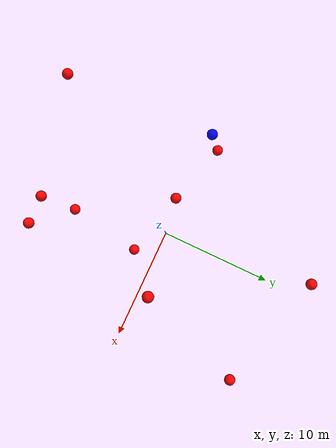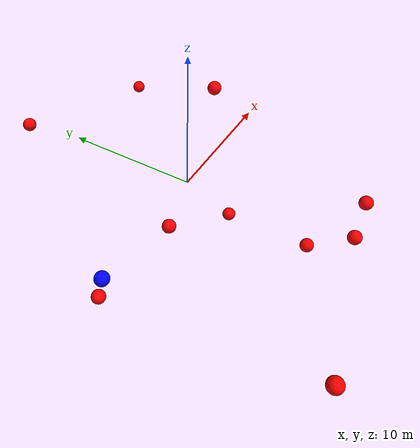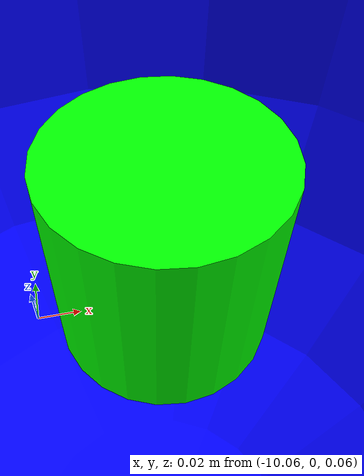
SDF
<?xml version="1.0" ?>
<sdf version="1.8">
    <world name="3d_world">
        <physics name="1ms" type="ode">
            <max_step_size>0.001</max_step_size>
            <real_time_factor>1.0</real_time_factor>
            <real_time_update_rate>1000.0</real_time_update_rate>
        </physics>
        <gravity>0 0 0</gravity>

        <plugin
            filename="gz-sim-physics-system"
            name="gz::sim::v8::systems::Physics">
        </plugin>
        <plugin
            filename="libignition-gazebo-user-commands-system.so"
            name="ignition::gazebo::systems::UserCommands">
        </plugin>
        <plugin
            filename="gz-sim-scene-broadcaster-system"
            name="gz::sim::systems::SceneBroadcaster">
        </plugin>
        <plugin
            filename="gz-sim-sensors-system"
            name="gz::sim::systems::Sensors">
            <render_engine>ogre2</render_engine>
        </plugin>

        <light type="directional" name="sun">
            <cast_shadows>true</cast_shadows>
            <pose>0 0 10 0 0 0</pose>
            <diffuse>0.8 0.8 0.8 1</diffuse>
            <specular>0.2 0.2 0.2 1</specular>
            <attenuation>
                <range>1000</range>
                <constant>0.9</constant>
                <linear>0.01</linear>
                <quadratic>0.001</quadratic>
            </attenuation>
            <direction>-0.5 0.1 -0.9</direction>
        </light>

        <!-- AGENTE -->
        <model name='agente' canonical_link='chassis'>
            <pose relative_to='world'>-10.0 0 0.0 0 0 0</pose>
            <link name='chassis'>
                <pose relative_to='__model__'>0.0 0 0.0 0 0 0</pose>
                <inertial>
                    <mass>1.14395</mass>
                    <inertia>
                        <ixx>0.095329</ixx>
                        <ixy>0</ixy>
                        <ixz>0</ixz>
                        <iyy>0.381317</iyy>
                        <iyz>0</iyz>
                        <izz>0.476646</izz>
                    </inertia>
                </inertial>
                <visual name='visual'>
                    <geometry>
                        <sphere>
                            <radius>0.5</radius>
                        </sphere>
                    </geometry>
                    <material>
                        <ambient>0.0 0.0 1.0 1</ambient>
                        <diffuse>0.0 0.0 1.0 1</diffuse>
                        <specular>0.0 0.0 1.0 1</specular>
                    </material>
                </visual>
                <collision name='collision'>
                    <geometry>
                        <sphere>
                            <radius>0.5</radius>
                        </sphere>
                    </geometry>
                </collision>
                <enable_gravity>false</enable_gravity>
            </link>

            <link name='lidar_link'>
                <pose relative_to='chassis'>0.0 0 0.1 0 0 0</pose>
                <inertial>
                    <mass>0.1</mass>
                    <inertia>
                        <ixx>0.000166667</ixx>
                        <iyy>0.000166667</iyy>
                        <izz>0.000166667</izz>
                    </inertia>
                </inertial>
                <collision name='collision'>
                    <geometry>
                        <cylinder>
                            <radius>0.05</radius>
                            <length>0.1</length>
                        </cylinder>
                    </geometry>
                </collision>
                <visual name='visual'>
                    <geometry>
                        <cylinder>
                            <radius>0.05</radius>
                            <length>0.1</length>
                        </cylinder>
                    </geometry>
                    <material>
                        <ambient>0.0 1.0 0.0 1</ambient>
                        <diffuse>0.0 1.0 0.0 1</diffuse>
                        <specular>0.0 1.0 0.0 1</specular>
                    </material>
                </visual>
                <sensor name="lidar" type="gpu_lidar">
                    <topic>scan</topic>
                    <update_rate>10</update_rate>
                    <lidar>
                        <scan>
                            <horizontal>
                                <samples>5000</samples>
                                <resolution>1</resolution>
                                <min_angle>-3.14159</min_angle>
                                <max_angle>3.14159</max_angle>
                            </horizontal>
                        </scan>
                        <range>
                            <min>0.1</min>
                            <max>10.0</max>
                            <resolution>0.01</resolution>
                        </range>
                    </lidar>
                    <visualize>true</visualize>
                    <always_on>true</always_on>
                    <update_rate>10</update_rate>
                    <pose_frame>lidar</pose_frame>
                </sensor>
                <enable_gravity>false</enable_gravity>
            </link>

            <joint name="lidar_joint" type="fixed">
                <parent>chassis</parent>
                <child>lidar_link</child>
            </joint>

            <plugin
                filename="ignition-gazebo-joint-state-publisher-system"
                name="ignition::gazebo::systems::JointStatePublisher">
            </plugin>
            <plugin
                filename="ignition-gazebo-odometry-publisher-system"
                name="ignition::gazebo::systems::OdometryPublisher">
                <dimensions>3</dimensions>
            </plugin>
            <plugin
                filename="ignition-gazebo-velocity-control-system"
                name="ignition::gazebo::systems::VelocityControl">
                <initial_linear>0.0 0 0</initial_linear>
                <initial_angular>0 0 0.0</initial_angular>
            </plugin>
            <plugin
                filename="libignition-gazebo-pose-publisher-system.so"
                name="ignition::gazebo::systems::PosePublisher">
                <topic>/agente/pose</topic>
                <frame_id>agente</frame_id>
                <update_rate>30</update_rate>
            </plugin>
        </model>

        <!-- OBSTACLE 1 -->
        <model name='obstacle_1' canonical_link='obstacle'>
            <static>false</static>
            <pose relative_to='world'>9.66 11.01 -0.84 0 0 0</pose>
            <link name='obstacle'>
                <pose relative_to='__model__'>0.0 0 0.0 0 0 0</pose>
                <visual name='visual'>
                    <geometry>
                        <sphere>
                            <radius>0.50</radius>
                        </sphere>
                    </geometry>
                    <material>
                        <ambient>1.0 0.0 0.0 1</ambient>
                        <diffuse>1.0 0.0 0.0 1</diffuse>
                        <specular>1.0 0.0 0.0 1</specular>
                    </material>
                </visual>
                <collision name='collision'>
                    <geometry>
                        <sphere>
                            <radius>0.50</radius>
                        </sphere>
                    </geometry>
                </collision>
                <enable_gravity>false</enable_gravity>
            </link>

            <plugin
                filename="ignition-gazebo-velocity-control-system"
                name="ignition::gazebo::systems::VelocityControl">
                <initial_linear>-1.17 -1.62 0.12</initial_linear>
                <initial_angular>0 0 0</initial_angular>
            </plugin>

            <plugin
                filename="ignition-gazebo-odometry-publisher-system"
                name="ignition::gazebo::systems::OdometryPublisher">
                <dimensions>3</dimensions>
            </plugin>
        </model>

        <!-- OBSTACLE 2 -->
        <model name='obstacle_2' canonical_link='obstacle'>
            <static>false</static>
            <pose relative_to='world'>1.58 -9.00 -3.08 0 0 0</pose>
            <link name='obstacle'>
                <pose relative_to='__model__'>0.0 0 0.0 0 0 0</pose>
                <visual name='visual'>
                    <geometry>
                        <sphere>
                            <radius>0.50</radius>
                        </sphere>
                    </geometry>
                    <material>
                        <ambient>1.0 0.0 0.0 1</ambient>
                        <diffuse>1.0 0.0 0.0 1</diffuse>
                        <specular>1.0 0.0 0.0 1</specular>
                    </material>
                </visual>
                <collision name='collision'>
                    <geometry>
                        <sphere>
                            <radius>0.50</radius>
                        </sphere>
                    </geometry>
                </collision>
                <enable_gravity>false</enable_gravity>
            </link>

            <plugin
                filename="ignition-gazebo-velocity-control-system"
                name="ignition::gazebo::systems::VelocityControl">
                <initial_linear>0.80 1.32 0.45</initial_linear>
                <initial_angular>0 0 0</initial_angular>
            </plugin>

            <plugin
                filename="ignition-gazebo-odometry-publisher-system"
                name="ignition::gazebo::systems::OdometryPublisher">
                <dimensions>3</dimensions>
            </plugin>
        </model>

        <!-- OBSTACLE 3 -->
        <model name='obstacle_3' canonical_link='obstacle'>
            <static>false</static>
            <pose relative_to='world'>-9.53 1.09 -3.22 0 0 0</pose>
            <link name='obstacle'>
                <pose relative_to='__model__'>0.0 0 0.0 0 0 0</pose>
                <visual name='visual'>
                    <geometry>
                        <sphere>
                            <radius>0.50</radius>
                        </sphere>
                    </geometry>
                    <material>
                        <ambient>1.0 0.0 0.0 1</ambient>
                        <diffuse>1.0 0.0 0.0 1</diffuse>
                        <specular>1.0 0.0 0.0 1</specular>
                    </material>
                </visual>
                <collision name='collision'>
                    <geometry>
                        <sphere>
                            <radius>0.50</radius>
                        </sphere>
                    </geometry>
                </collision>
                <enable_gravity>false</enable_gravity>
            </link>

            <plugin
                filename="ignition-gazebo-velocity-control-system"
                name="ignition::gazebo::systems::VelocityControl">
                <initial_linear>1.82 -0.26 0.78</initial_linear>
                <initial_angular>0 0 0</initial_angular>
            </plugin>

            <plugin
                filename="ignition-gazebo-odometry-publisher-system"
                name="ignition::gazebo::systems::OdometryPublisher">
                <dimensions>3</dimensions>
            </plugin>
        </model>

        <!-- OBSTACLE 4 -->
        <model name='obstacle_4' canonical_link='obstacle'>
            <static>false</static>
            <pose relative_to='world'>5.40 0.95 4.63 0 0 0</pose>
            <link name='obstacle'>
                <pose relative_to='__model__'>0.0 0 0.0 0 0 0</pose>
                <visual name='visual'>
                    <geometry>
                        <sphere>
                            <radius>0.50</radius>
                        </sphere>
                    </geometry>
                    <material>
                        <ambient>1.0 0.0 0.0 1</ambient>
                        <diffuse>1.0 0.0 0.0 1</diffuse>
                        <specular>1.0 0.0 0.0 1</specular>
                    </material>
                </visual>
                <collision name='collision'>
                    <geometry>
                        <sphere>
                            <radius>0.50</radius>
                        </sphere>
                    </geometry>
                </collision>
                <enable_gravity>false</enable_gravity>
            </link>

            <plugin
                filename="ignition-gazebo-velocity-control-system"
                name="ignition::gazebo::systems::VelocityControl">
                <initial_linear>-0.61 -0.19 -0.94</initial_linear>
                <initial_angular>0 0 0</initial_angular>
            </plugin>

            <plugin
                filename="ignition-gazebo-odometry-publisher-system"
                name="ignition::gazebo::systems::OdometryPublisher">
                <dimensions>3</dimensions>
            </plugin>
        </model>

        <!-- OBSTACLE 5 -->
        <model name='obstacle_5' canonical_link='obstacle'>
            <static>false</static>
            <pose relative_to='world'>4.43 -11.67 0.11 0 0 0</pose>
            <link name='obstacle'>
                <pose relative_to='__model__'>0.0 0 0.0 0 0 0</pose>
                <visual name='visual'>
                    <geometry>
                        <sphere>
                            <radius>0.50</radius>
                        </sphere>
                    </geometry>
                    <material>
                        <ambient>1.0 0.0 0.0 1</ambient>
                        <diffuse>1.0 0.0 0.0 1</diffuse>
                        <specular>1.0 0.0 0.0 1</specular>
                    </material>
                </visual>
                <collision name='collision'>
                    <geometry>
                        <sphere>
                            <radius>0.50</radius>
                        </sphere>
                    </geometry>
                </collision>
                <enable_gravity>false</enable_gravity>
            </link>

            <plugin
                filename="ignition-gazebo-velocity-control-system"
                name="ignition::gazebo::systems::VelocityControl">
                <initial_linear>-0.25 1.98 -0.02</initial_linear>
                <initial_angular>0 0 0</initial_angular>
            </plugin>

            <plugin
                filename="ignition-gazebo-odometry-publisher-system"
                name="ignition::gazebo::systems::OdometryPublisher">
                <dimensions>3</dimensions>
            </plugin>
        </model>

        <!-- OBSTACLE 6 -->
        <model name='obstacle_6' canonical_link='obstacle'>
            <static>false</static>
            <pose relative_to='world'>-1.40 13.69 0.80 0 0 0</pose>
            <link name='obstacle'>
                <pose relative_to='__model__'>0.0 0 0.0 0 0 0</pose>
                <visual name='visual'>
                    <geometry>
                        <sphere>
                            <radius>0.50</radius>
                        </sphere>
                    </geometry>
                    <material>
                        <ambient>1.0 0.0 0.0 1</ambient>
                        <diffuse>1.0 0.0 0.0 1</diffuse>
                        <specular>1.0 0.0 0.0 1</specular>
                    </material>
                </visual>
                <collision name='collision'>
                    <geometry>
                        <sphere>
                            <radius>0.50</radius>
                        </sphere>
                    </geometry>
                </collision>
                <enable_gravity>false</enable_gravity>
            </link>

            <plugin
                filename="ignition-gazebo-velocity-control-system"
                name="ignition::gazebo::systems::VelocityControl">
                <initial_linear>1.00 -1.73 -0.10</initial_linear>
                <initial_angular>0 0 0</initial_angular>
            </plugin>

            <plugin
                filename="ignition-gazebo-odometry-publisher-system"
                name="ignition::gazebo::systems::OdometryPublisher">
                <dimensions>3</dimensions>
            </plugin>
        </model>

        <!-- OBSTACLE 7 -->
        <model name='obstacle_7' canonical_link='obstacle'>
            <static>false</static>
            <pose relative_to='world'>2.72 -2.22 -4.49 0 0 0</pose>
            <link name='obstacle'>
                <pose relative_to='__model__'>0.0 0 0.0 0 0 0</pose>
                <visual name='visual'>
                    <geometry>
                        <sphere>
                            <radius>0.50</radius>
                        </sphere>
                    </geometry>
                    <material>
                        <ambient>1.0 0.0 0.0 1</ambient>
                        <diffuse>1.0 0.0 0.0 1</diffuse>
                        <specular>1.0 0.0 0.0 1</specular>
                    </material>
                </visual>
                <collision name='collision'>
                    <geometry>
                        <sphere>
                            <radius>0.50</radius>
                        </sphere>
                    </geometry>
                </collision>
                <enable_gravity>false</enable_gravity>
            </link>

            <plugin
                filename="ignition-gazebo-velocity-control-system"
                name="ignition::gazebo::systems::VelocityControl">
                <initial_linear>0.01 0.44 0.88</initial_linear>
                <initial_angular>0 0 0</initial_angular>
            </plugin>

            <plugin
                filename="ignition-gazebo-odometry-publisher-system"
                name="ignition::gazebo::systems::OdometryPublisher">
                <dimensions>3</dimensions>
            </plugin>
        </model>

        <!-- OBSTACLE 8 -->
        <model name='obstacle_8' canonical_link='obstacle'>
            <static>false</static>
            <pose relative_to='world'>-9.37 -14.30 0.28 0 0 0</pose>
            <link name='obstacle'>
                <pose relative_to='__model__'>0.0 0 0.0 0 0 0</pose>
                <visual name='visual'>
                    <geometry>
                        <sphere>
                            <radius>0.50</radius>
                        </sphere>
                    </geometry>
                    <material>
                        <ambient>1.0 0.0 0.0 1</ambient>
                        <diffuse>1.0 0.0 0.0 1</diffuse>
                        <specular>1.0 0.0 0.0 1</specular>
                    </material>
                </visual>
                <collision name='collision'>
                    <geometry>
                        <sphere>
                            <radius>0.50</radius>
                        </sphere>
                    </geometry>
                </collision>
                <enable_gravity>false</enable_gravity>
            </link>

            <plugin
                filename="ignition-gazebo-velocity-control-system"
                name="ignition::gazebo::systems::VelocityControl">
                <initial_linear>1.47 1.35 -0.03</initial_linear>
                <initial_angular>0 0 0</initial_angular>
            </plugin>

            <plugin
                filename="ignition-gazebo-odometry-publisher-system"
                name="ignition::gazebo::systems::OdometryPublisher">
                <dimensions>3</dimensions>
            </plugin>
        </model>

        <!-- OBSTACLE 9 -->
        <model name='obstacle_9' canonical_link='obstacle'>
            <static>false</static>
            <pose relative_to='world'>-3.40 -0.56 -1.18 0 0 0</pose>
            <link name='obstacle'>
                <pose relative_to='__model__'>0.0 0 0.0 0 0 0</pose>
                <visual name='visual'>
                    <geometry>
                        <sphere>
                            <radius>0.50</radius>
                        </sphere>
                    </geometry>
                    <material>
                        <ambient>1.0 0.0 0.0 1</ambient>
                        <diffuse>1.0 0.0 0.0 1</diffuse>
                        <specular>1.0 0.0 0.0 1</specular>
                    </material>
                </visual>
                <collision name='collision'>
                    <geometry>
                        <sphere>
                            <radius>0.50</radius>
                        </sphere>
                    </geometry>
                </collision>
                <enable_gravity>false</enable_gravity>
            </link>

            <plugin
                filename="ignition-gazebo-velocity-control-system"
                name="ignition::gazebo::systems::VelocityControl">
                <initial_linear>1.45 0.09 0.19</initial_linear>
                <initial_angular>0 0 0</initial_angular>
            </plugin>

            <plugin
                filename="ignition-gazebo-odometry-publisher-system"
                name="ignition::gazebo::systems::OdometryPublisher">
                <dimensions>3</dimensions>
            </plugin>
        </model>

        <!-- OBSTACLE 10 -->
        <model name='obstacle_10' canonical_link='obstacle'>
            <static>false</static>
            <pose relative_to='world'>1.76 -11.92 -0.72 0 0 0</pose>
            <link name='obstacle'>
                <pose relative_to='__model__'>0.0 0 0.0 0 0 0</pose>
                <visual name='visual'>
                    <geometry>
                        <sphere>
                            <radius>0.50</radius>
                        </sphere>
                    </geometry>
                    <material>
                        <ambient>1.0 0.0 0.0 1</ambient>
                        <diffuse>1.0 0.0 0.0 1</diffuse>
                        <specular>1.0 0.0 0.0 1</specular>
                    </material>
                </visual>
                <collision name='collision'>
                    <geometry>
                        <sphere>
                            <radius>0.50</radius>
                        </sphere>
                    </geometry>
                </collision>
                <enable_gravity>false</enable_gravity>
            </link>

            <plugin
                filename="ignition-gazebo-velocity-control-system"
                name="ignition::gazebo::systems::VelocityControl">
                <initial_linear>0.35 1.97 0.12</initial_linear>
                <initial_angular>0 0 0</initial_angular>
            </plugin>

            <plugin
                filename="ignition-gazebo-odometry-publisher-system"
                name="ignition::gazebo::systems::OdometryPublisher">
                <dimensions>3</dimensions>
            </plugin>
        </model>

    </world>
</sdf>
